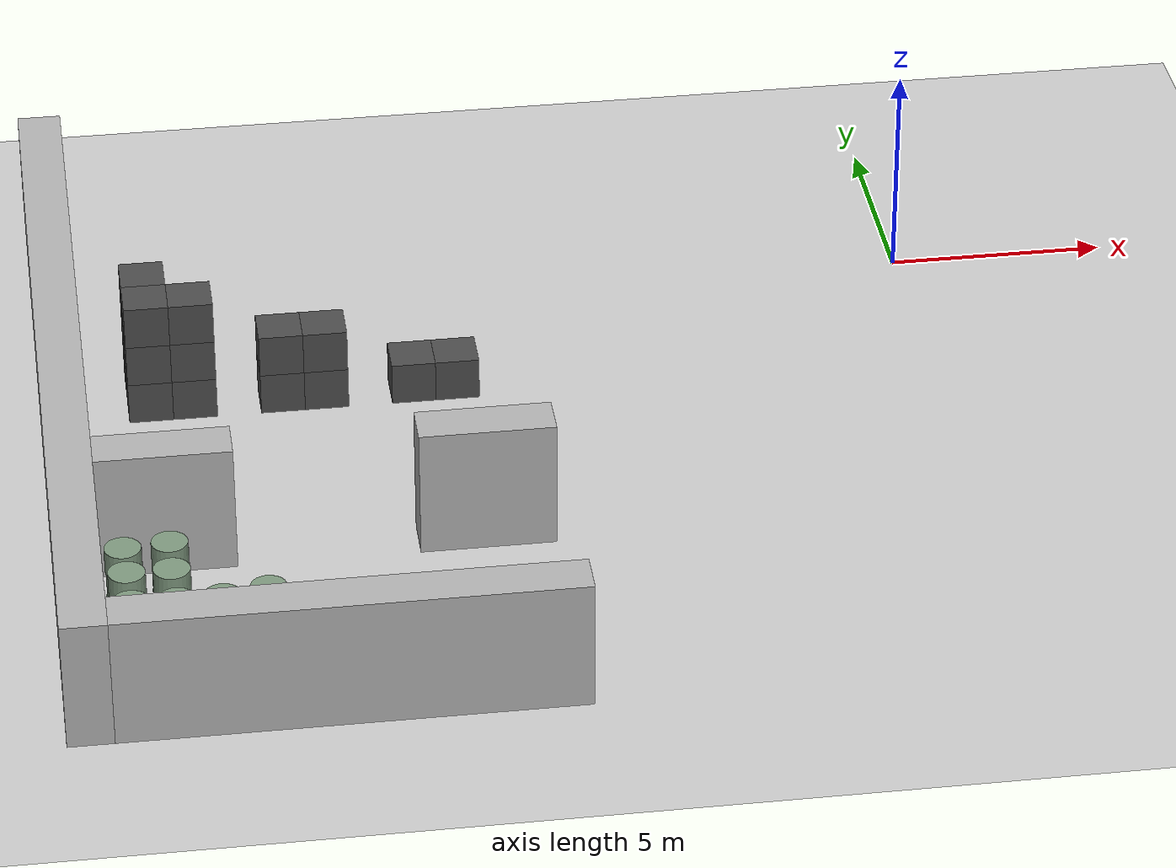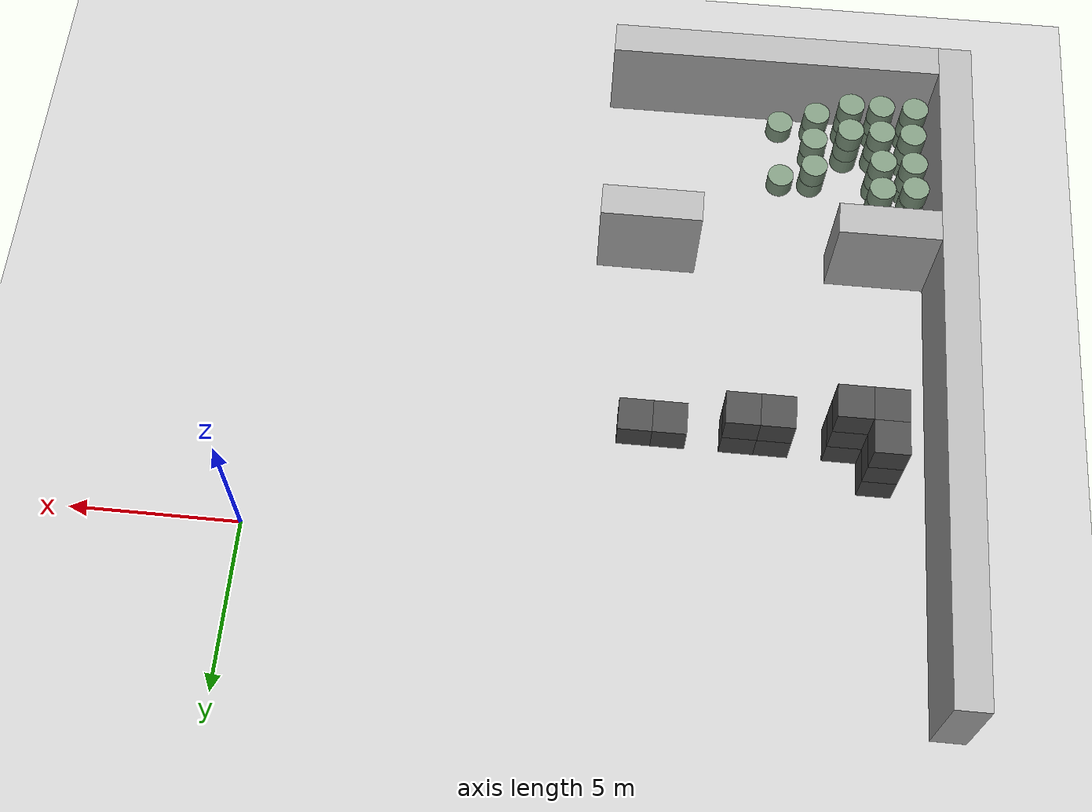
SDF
<sdf version="1.6">
 <world name="default">
  <include><uri>model://ground_plane</uri></include>
  <model name="wall_0">
   <pose>-20.0 -6.0 1.5 0 -0 0</pose>
   <static>True</static>
   <link name="link">
    <inertial>
     <mass>100</mass>
     <inertia>
      <ixx>0.166667</ixx>
      <ixy>0</ixy>
      <ixz>0</ixz>
      <iyy>0.166667</iyy>
      <iyz>0</iyz>
      <izz>0.166667</izz>
     </inertia>
    </inertial>
    <collision name="collision"><geometry><box><size>1.0 21.0 3.0</size></box></geometry></collision>
    <visual name="visual">
     <geometry><box><size>1.0 21.0 3.0</size></box></geometry>
     <material><ambient>0.7 0.7 0.7 1</ambient><diffuse>0.7 0.7 0.7 1</diffuse></material>
    </visual>
   </link>
  </model>
  <model name="wall_5">
   <pose>-14.5 -16.0 1.5 0 -0 0</pose>
   <static>True</static>
   <link name="link">
    <inertial>
     <mass>100</mass>
     <inertia>
      <ixx>0.166667</ixx>
      <ixy>0</ixy>
      <ixz>0</ixz>
      <iyy>0.166667</iyy>
      <iyz>0</iyz>
      <izz>0.166667</izz>
     </inertia>
    </inertial>
    <collision name="collision"><geometry><box><size>10.0 1.0 3.0</size></box></geometry></collision>
    <visual name="visual">
     <geometry><box><size>10.0 1.0 3.0</size></box></geometry>
     <material><ambient>0.7 0.7 0.7 1</ambient><diffuse>0.7 0.7 0.7 1</diffuse></material>
    </visual>
   </link>
  </model>
  <model name="wall_7">
   <pose>-18.0 -10.0 1.5 0 -0 0</pose>
   <static>True</static>
   <link name="link">
    <inertial>
     <mass>100</mass>
     <inertia>
      <ixx>0.166667</ixx>
      <ixy>0</ixy>
      <ixz>0</ixz>
      <iyy>0.166667</iyy>
      <iyz>0</iyz>
      <izz>0.166667</izz>
     </inertia>
    </inertial>
    <collision name="collision"><geometry><box><size>3.0 1.0 3.0</size></box></geometry></collision>
    <visual name="visual">
     <geometry><box><size>3.0 1.0 3.0</size></box></geometry>
     <material><ambient>0.7 0.7 0.7 1</ambient><diffuse>0.7 0.7 0.7 1</diffuse></material>
    </visual>
   </link>
  </model>
  <model name="wall_8">
   <pose>-11.0 -10.0 1.5 0 -0 0</pose>
   <static>True</static>
   <link name="link">
    <inertial>
     <mass>100</mass>
     <inertia>
      <ixx>0.166667</ixx>
      <ixy>0</ixy>
      <ixz>0</ixz>
      <iyy>0.166667</iyy>
      <iyz>0</iyz>
      <izz>0.166667</izz>
     </inertia>
    </inertial>
    <collision name="collision"><geometry><box><size>3.0 1.0 3.0</size></box></geometry></collision>
    <visual name="visual">
     <geometry><box><size>3.0 1.0 3.0</size></box></geometry>
     <material><ambient>0.7 0.7 0.7 1</ambient><diffuse>0.7 0.7 0.7 1</diffuse></material>
    </visual>
   </link>
  </model>
  <model name="unit_box_0">
   <pose>-18.0 -4.0 0.5 0 -0 0</pose>
   <static>True</static>
   <link name="link">
    <inertial>
     <mass>100</mass>
     <inertia>
      <ixx>0.166667</ixx>
      <ixy>0</ixy>
      <ixz>0</ixz>
      <iyy>0.166667</iyy>
      <iyz>0</iyz>
      <izz>0.166667</izz>
     </inertia>
    </inertial>
    <collision name="collision"><geometry><box><size>1.0 1.0 1.0</size></box></geometry></collision>
    <visual name="visual">
     <geometry><box><size>1.0 1.0 1.0</size></box></geometry>
     <material><ambient>0.3 0.3 0.3 1</ambient><diffuse>0.3 0.3 0.3 1</diffuse></material>
    </visual>
   </link>
  </model>
  <model name="unit_box_1">
   <pose>-18.0 -4.0 1.5 0 -0 0</pose>
   <static>True</static>
   <link name="link">
    <inertial>
     <mass>100</mass>
     <inertia>
      <ixx>0.166667</ixx>
      <ixy>0</ixy>
      <ixz>0</ixz>
      <iyy>0.166667</iyy>
      <iyz>0</iyz>
      <izz>0.166667</izz>
     </inertia>
    </inertial>
    <collision name="collision"><geometry><box><size>1.0 1.0 1.0</size></box></geometry></collision>
    <visual name="visual">
     <geometry><box><size>1.0 1.0 1.0</size></box></geometry>
     <material><ambient>0.3 0.3 0.3 1</ambient><diffuse>0.3 0.3 0.3 1</diffuse></material>
    </visual>
   </link>
  </model>
  <model name="unit_box_2">
   <pose>-18.0 -4.0 2.5 0 -0 0</pose>
   <static>True</static>
   <link name="link">
    <inertial>
     <mass>100</mass>
     <inertia>
      <ixx>0.166667</ixx>
      <ixy>0</ixy>
      <ixz>0</ixz>
      <iyy>0.166667</iyy>
      <iyz>0</iyz>
      <izz>0.166667</izz>
     </inertia>
    </inertial>
    <collision name="collision"><geometry><box><size>1.0 1.0 1.0</size></box></geometry></collision>
    <visual name="visual">
     <geometry><box><size>1.0 1.0 1.0</size></box></geometry>
     <material><ambient>0.3 0.3 0.3 1</ambient><diffuse>0.3 0.3 0.3 1</diffuse></material>
    </visual>
   </link>
  </model>
  <model name="unit_box_3">
   <pose>-18.0 -3.0 0.5 0 -0 0</pose>
   <static>True</static>
   <link name="link">
    <inertial>
     <mass>100</mass>
     <inertia>
      <ixx>0.166667</ixx>
      <ixy>0</ixy>
      <ixz>0</ixz>
      <iyy>0.166667</iyy>
      <iyz>0</iyz>
      <izz>0.166667</izz>
     </inertia>
    </inertial>
    <collision name="collision"><geometry><box><size>1.0 1.0 1.0</size></box></geometry></collision>
    <visual name="visual">
     <geometry><box><size>1.0 1.0 1.0</size></box></geometry>
     <material><ambient>0.3 0.3 0.3 1</ambient><diffuse>0.3 0.3 0.3 1</diffuse></material>
    </visual>
   </link>
  </model>
  <model name="unit_box_4">
   <pose>-18.0 -3.0 1.5 0 -0 0</pose>
   <static>True</static>
   <link name="link">
    <inertial>
     <mass>100</mass>
     <inertia>
      <ixx>0.166667</ixx>
      <ixy>0</ixy>
      <ixz>0</ixz>
      <iyy>0.166667</iyy>
      <iyz>0</iyz>
      <izz>0.166667</izz>
     </inertia>
    </inertial>
    <collision name="collision"><geometry><box><size>1.0 1.0 1.0</size></box></geometry></collision>
    <visual name="visual">
     <geometry><box><size>1.0 1.0 1.0</size></box></geometry>
     <material><ambient>0.3 0.3 0.3 1</ambient><diffuse>0.3 0.3 0.3 1</diffuse></material>
    </visual>
   </link>
  </model>
  <model name="unit_box_5">
   <pose>-18.0 -3.0 2.5 0 -0 0</pose>
   <static>True</static>
   <link name="link">
    <inertial>
     <mass>100</mass>
     <inertia>
      <ixx>0.166667</ixx>
      <ixy>0</ixy>
      <ixz>0</ixz>
      <iyy>0.166667</iyy>
      <iyz>0</iyz>
      <izz>0.166667</izz>
     </inertia>
    </inertial>
    <collision name="collision"><geometry><box><size>1.0 1.0 1.0</size></box></geometry></collision>
    <visual name="visual">
     <geometry><box><size>1.0 1.0 1.0</size></box></geometry>
     <material><ambient>0.3 0.3 0.3 1</ambient><diffuse>0.3 0.3 0.3 1</diffuse></material>
    </visual>
   </link>
  </model>
  <model name="unit_box_15">
   <pose>-17.0 -4.0 0.5 0 -0 0</pose>
   <static>True</static>
   <link name="link">
    <inertial>
     <mass>100</mass>
     <inertia>
      <ixx>0.166667</ixx>
      <ixy>0</ixy>
      <ixz>0</ixz>
      <iyy>0.166667</iyy>
      <iyz>0</iyz>
      <izz>0.166667</izz>
     </inertia>
    </inertial>
    <collision name="collision"><geometry><box><size>1.0 1.0 1.0</size></box></geometry></collision>
    <visual name="visual">
     <geometry><box><size>1.0 1.0 1.0</size></box></geometry>
     <material><ambient>0.3 0.3 0.3 1</ambient><diffuse>0.3 0.3 0.3 1</diffuse></material>
    </visual>
   </link>
  </model>
  <model name="unit_box_16">
   <pose>-17.0 -4.0 1.5 0 -0 0</pose>
   <static>True</static>
   <link name="link">
    <inertial>
     <mass>100</mass>
     <inertia>
      <ixx>0.166667</ixx>
      <ixy>0</ixy>
      <ixz>0</ixz>
      <iyy>0.166667</iyy>
      <iyz>0</iyz>
      <izz>0.166667</izz>
     </inertia>
    </inertial>
    <collision name="collision"><geometry><box><size>1.0 1.0 1.0</size></box></geometry></collision>
    <visual name="visual">
     <geometry><box><size>1.0 1.0 1.0</size></box></geometry>
     <material><ambient>0.3 0.3 0.3 1</ambient><diffuse>0.3 0.3 0.3 1</diffuse></material>
    </visual>
   </link>
  </model>
  <model name="unit_box_17">
   <pose>-17.0 -4.0 2.5 0 -0 0</pose>
   <static>True</static>
   <link name="link">
    <inertial>
     <mass>100</mass>
     <inertia>
      <ixx>0.166667</ixx>
      <ixy>0</ixy>
      <ixz>0</ixz>
      <iyy>0.166667</iyy>
      <iyz>0</iyz>
      <izz>0.166667</izz>
     </inertia>
    </inertial>
    <collision name="collision"><geometry><box><size>1.0 1.0 1.0</size></box></geometry></collision>
    <visual name="visual">
     <geometry><box><size>1.0 1.0 1.0</size></box></geometry>
     <material><ambient>0.3 0.3 0.3 1</ambient><diffuse>0.3 0.3 0.3 1</diffuse></material>
    </visual>
   </link>
  </model>
  <model name="unit_box_31">
   <pose>-15.0 -4.0 0.5 0 -0 0</pose>
   <static>True</static>
   <link name="link">
    <inertial>
     <mass>100</mass>
     <inertia>
      <ixx>0.166667</ixx>
      <ixy>0</ixy>
      <ixz>0</ixz>
      <iyy>0.166667</iyy>
      <iyz>0</iyz>
      <izz>0.166667</izz>
     </inertia>
    </inertial>
    <collision name="collision"><geometry><box><size>1.0 1.0 1.0</size></box></geometry></collision>
    <visual name="visual">
     <geometry><box><size>1.0 1.0 1.0</size></box></geometry>
     <material><ambient>0.3 0.3 0.3 1</ambient><diffuse>0.3 0.3 0.3 1</diffuse></material>
    </visual>
   </link>
  </model>
  <model name="unit_box_32">
   <pose>-15.0 -4.0 1.5 0 -0 0</pose>
   <static>True</static>
   <link name="link">
    <inertial>
     <mass>100</mass>
     <inertia>
      <ixx>0.166667</ixx>
      <ixy>0</ixy>
      <ixz>0</ixz>
      <iyy>0.166667</iyy>
      <iyz>0</iyz>
      <izz>0.166667</izz>
     </inertia>
    </inertial>
    <collision name="collision"><geometry><box><size>1.0 1.0 1.0</size></box></geometry></collision>
    <visual name="visual">
     <geometry><box><size>1.0 1.0 1.0</size></box></geometry>
     <material><ambient>0.3 0.3 0.3 1</ambient><diffuse>0.3 0.3 0.3 1</diffuse></material>
    </visual>
   </link>
  </model>
  <model name="unit_box_41">
   <pose>-14.0 -4.0 0.5 0 -0 0</pose>
   <static>True</static>
   <link name="link">
    <inertial>
     <mass>100</mass>
     <inertia>
      <ixx>0.166667</ixx>
      <ixy>0</ixy>
      <ixz>0</ixz>
      <iyy>0.166667</iyy>
      <iyz>0</iyz>
      <izz>0.166667</izz>
     </inertia>
    </inertial>
    <collision name="collision"><geometry><box><size>1.0 1.0 1.0</size></box></geometry></collision>
    <visual name="visual">
     <geometry><box><size>1.0 1.0 1.0</size></box></geometry>
     <material><ambient>0.3 0.3 0.3 1</ambient><diffuse>0.3 0.3 0.3 1</diffuse></material>
    </visual>
   </link>
  </model>
  <model name="unit_box_42">
   <pose>-14.0 -4.0 1.5 0 -0 0</pose>
   <static>True</static>
   <link name="link">
    <inertial>
     <mass>100</mass>
     <inertia>
      <ixx>0.166667</ixx>
      <ixy>0</ixy>
      <ixz>0</ixz>
      <iyy>0.166667</iyy>
      <iyz>0</iyz>
      <izz>0.166667</izz>
     </inertia>
    </inertial>
    <collision name="collision"><geometry><box><size>1.0 1.0 1.0</size></box></geometry></collision>
    <visual name="visual">
     <geometry><box><size>1.0 1.0 1.0</size></box></geometry>
     <material><ambient>0.3 0.3 0.3 1</ambient><diffuse>0.3 0.3 0.3 1</diffuse></material>
    </visual>
   </link>
  </model>
  <model name="unit_box_51">
   <pose>-12.0 -4.0 0.5 0 -0 0</pose>
   <static>True</static>
   <link name="link">
    <inertial>
     <mass>100</mass>
     <inertia>
      <ixx>0.166667</ixx>
      <ixy>0</ixy>
      <ixz>0</ixz>
      <iyy>0.166667</iyy>
      <iyz>0</iyz>
      <izz>0.166667</izz>
     </inertia>
    </inertial>
    <collision name="collision"><geometry><box><size>1.0 1.0 1.0</size></box></geometry></collision>
    <visual name="visual">
     <geometry><box><size>1.0 1.0 1.0</size></box></geometry>
     <material><ambient>0.3 0.3 0.3 1</ambient><diffuse>0.3 0.3 0.3 1</diffuse></material>
    </visual>
   </link>
  </model>
  <model name="unit_box_55">
   <pose>-11.0 -4.0 0.5 0 -0 0</pose>
   <static>True</static>
   <link name="link">
    <inertial>
     <mass>100</mass>
     <inertia>
      <ixx>0.166667</ixx>
      <ixy>0</ixy>
      <ixz>0</ixz>
      <iyy>0.166667</iyy>
      <iyz>0</iyz>
      <izz>0.166667</izz>
     </inertia>
    </inertial>
    <collision name="collision"><geometry><box><size>1.0 1.0 1.0</size></box></geometry></collision>
    <visual name="visual">
     <geometry><box><size>1.0 1.0 1.0</size></box></geometry>
     <material><ambient>0.3 0.3 0.3 1</ambient><diffuse>0.3 0.3 0.3 1</diffuse></material>
    </visual>
   </link>
  </model>
  <model name="unit_cylinder_0">
   <pose>-19.0256209289 -15.0215560185 0.3 0 -0 0</pose>
   <static>True</static>
   <link name="link">
    <inertial>
     <mass>100</mass>
     <inertia><ixx>0.145833</ixx><ixy>0</ixy><ixz>0</ixz><iyy>0.145833</iyy><iyz>0</iyz><izz>0.125</izz></inertia>
    </inertial>
    <collision name="collision">
     <geometry><cylinder><radius>0.4</radius><length>0.6</length></cylinder></geometry>
     <max_contacts>100</max_contacts>
    </collision>
    <visual name="visual">
     <geometry><cylinder><radius>0.4</radius><length>0.6</length></cylinder></geometry>
     <material><ambient>0.5 0.6 0.5 1</ambient><diffuse>0.5 0.6 0.5 1</diffuse></material>
    </visual>
   </link>
  </model>
  <model name="unit_cylinder_1">
   <pose>-19.0192425277 -15.023853561 0.9 0 -0 0</pose>
   <static>True</static>
   <link name="link">
    <inertial>
     <mass>100</mass>
     <inertia><ixx>0.145833</ixx><ixy>0</ixy><ixz>0</ixz><iyy>0.145833</iyy><iyz>0</iyz><izz>0.125</izz></inertia>
    </inertial>
    <collision name="collision">
     <geometry><cylinder><radius>0.4</radius><length>0.6</length></cylinder></geometry>
     <max_contacts>100</max_contacts>
    </collision>
    <visual name="visual">
     <geometry><cylinder><radius>0.4</radius><length>0.6</length></cylinder></geometry>
     <material><ambient>0.5 0.6 0.5 1</ambient><diffuse>0.5 0.6 0.5 1</diffuse></material>
    </visual>
   </link>
  </model>
  <model name="unit_cylinder_2">
   <pose>-19.0184877084 -15.0180010428 1.5 0 -0 0</pose>
   <static>True</static>
   <link name="link">
    <inertial>
     <mass>100</mass>
     <inertia><ixx>0.145833</ixx><ixy>0</ixy><ixz>0</ixz><iyy>0.145833</iyy><iyz>0</iyz><izz>0.125</izz></inertia>
    </inertial>
    <collision name="collision">
     <geometry><cylinder><radius>0.4</radius><length>0.6</length></cylinder></geometry>
     <max_contacts>100</max_contacts>
    </collision>
    <visual name="visual">
     <geometry><cylinder><radius>0.4</radius><length>0.6</length></cylinder></geometry>
     <material><ambient>0.5 0.6 0.5 1</ambient><diffuse>0.5 0.6 0.5 1</diffuse></material>
    </visual>
   </link>
  </model>
  <model name="unit_cylinder_3">
   <pose>-18.953104168 -14.0377245221 0.3 0 -0 0</pose>
   <static>True</static>
   <link name="link">
    <inertial>
     <mass>100</mass>
     <inertia><ixx>0.145833</ixx><ixy>0</ixy><ixz>0</ixz><iyy>0.145833</iyy><iyz>0</iyz><izz>0.125</izz></inertia>
    </inertial>
    <collision name="collision">
     <geometry><cylinder><radius>0.4</radius><length>0.6</length></cylinder></geometry>
     <max_contacts>100</max_contacts>
    </collision>
    <visual name="visual">
     <geometry><cylinder><radius>0.4</radius><length>0.6</length></cylinder></geometry>
     <material><ambient>0.5 0.6 0.5 1</ambient><diffuse>0.5 0.6 0.5 1</diffuse></material>
    </visual>
   </link>
  </model>
  <model name="unit_cylinder_4">
   <pose>-18.9475921119 -14.0286620714 0.9 0 -0 0</pose>
   <static>True</static>
   <link name="link">
    <inertial>
     <mass>100</mass>
     <inertia><ixx>0.145833</ixx><ixy>0</ixy><ixz>0</ixz><iyy>0.145833</iyy><iyz>0</iyz><izz>0.125</izz></inertia>
    </inertial>
    <collision name="collision">
     <geometry><cylinder><radius>0.4</radius><length>0.6</length></cylinder></geometry>
     <max_contacts>100</max_contacts>
    </collision>
    <visual name="visual">
     <geometry><cylinder><radius>0.4</radius><length>0.6</length></cylinder></geometry>
     <material><ambient>0.5 0.6 0.5 1</ambient><diffuse>0.5 0.6 0.5 1</diffuse></material>
    </visual>
   </link>
  </model>
  <model name="unit_cylinder_5">
   <pose>-18.9456277575 -14.0303023276 1.5 0 -0 0</pose>
   <static>True</static>
   <link name="link">
    <inertial>
     <mass>100</mass>
     <inertia><ixx>0.145833</ixx><ixy>0</ixy><ixz>0</ixz><iyy>0.145833</iyy><iyz>0</iyz><izz>0.125</izz></inertia>
    </inertial>
    <collision name="collision">
     <geometry><cylinder><radius>0.4</radius><length>0.6</length></cylinder></geometry>
     <max_contacts>100</max_contacts>
    </collision>
    <visual name="visual">
     <geometry><cylinder><radius>0.4</radius><length>0.6</length></cylinder></geometry>
     <material><ambient>0.5 0.6 0.5 1</ambient><diffuse>0.5 0.6 0.5 1</diffuse></material>
    </visual>
   </link>
  </model>
  <model name="unit_cylinder_6">
   <pose>-18.98061288 -12.9682051942 0.3 0 -0 0</pose>
   <static>True</static>
   <link name="link">
    <inertial>
     <mass>100</mass>
     <inertia><ixx>0.145833</ixx><ixy>0</ixy><ixz>0</ixz><iyy>0.145833</iyy><iyz>0</iyz><izz>0.125</izz></inertia>
    </inertial>
    <collision name="collision">
     <geometry><cylinder><radius>0.4</radius><length>0.6</length></cylinder></geometry>
     <max_contacts>100</max_contacts>
    </collision>
    <visual name="visual">
     <geometry><cylinder><radius>0.4</radius><length>0.6</length></cylinder></geometry>
     <material><ambient>0.5 0.6 0.5 1</ambient><diffuse>0.5 0.6 0.5 1</diffuse></material>
    </visual>
   </link>
  </model>
  <model name="unit_cylinder_7">
   <pose>-18.9729813097 -12.9644257842 0.9 0 -0 0</pose>
   <static>True</static>
   <link name="link">
    <inertial>
     <mass>100</mass>
     <inertia><ixx>0.145833</ixx><ixy>0</ixy><ixz>0</ixz><iyy>0.145833</iyy><iyz>0</iyz><izz>0.125</izz></inertia>
    </inertial>
    <collision name="collision">
     <geometry><cylinder><radius>0.4</radius><length>0.6</length></cylinder></geometry>
     <max_contacts>100</max_contacts>
    </collision>
    <visual name="visual">
     <geometry><cylinder><radius>0.4</radius><length>0.6</length></cylinder></geometry>
     <material><ambient>0.5 0.6 0.5 1</ambient><diffuse>0.5 0.6 0.5 1</diffuse></material>
    </visual>
   </link>
  </model>
  <model name="unit_cylinder_8">
   <pose>-18.9767976244 -12.9632901843 1.5 0 -0 0</pose>
   <static>True</static>
   <link name="link">
    <inertial>
     <mass>100</mass>
     <inertia><ixx>0.145833</ixx><ixy>0</ixy><ixz>0</ixz><iyy>0.145833</iyy><iyz>0</iyz><izz>0.125</izz></inertia>
    </inertial>
    <collision name="collision">
     <geometry><cylinder><radius>0.4</radius><length>0.6</length></cylinder></geometry>
     <max_contacts>100</max_contacts>
    </collision>
    <visual name="visual">
     <geometry><cylinder><radius>0.4</radius><length>0.6</length></cylinder></geometry>
     <material><ambient>0.5 0.6 0.5 1</ambient><diffuse>0.5 0.6 0.5 1</diffuse></material>
    </visual>
   </link>
  </model>
  <model name="unit_cylinder_9">
   <pose>-19.002848909 -12.0560067834 0.3 0 -0 0</pose>
   <static>True</static>
   <link name="link">
    <inertial>
     <mass>100</mass>
     <inertia><ixx>0.145833</ixx><ixy>0</ixy><ixz>0</ixz><iyy>0.145833</iyy><iyz>0</iyz><izz>0.125</izz></inertia>
    </inertial>
    <collision name="collision">
     <geometry><cylinder><radius>0.4</radius><length>0.6</length></cylinder></geometry>
     <max_contacts>100</max_contacts>
    </collision>
    <visual name="visual">
     <geometry><cylinder><radius>0.4</radius><length>0.6</length></cylinder></geometry>
     <material><ambient>0.5 0.6 0.5 1</ambient><diffuse>0.5 0.6 0.5 1</diffuse></material>
    </visual>
   </link>
  </model>
  <model name="unit_cylinder_10">
   <pose>-18.9887632329 -12.0552406525 0.9 0 -0 0</pose>
   <static>True</static>
   <link name="link">
    <inertial>
     <mass>100</mass>
     <inertia><ixx>0.145833</ixx><ixy>0</ixy><ixz>0</ixz><iyy>0.145833</iyy><iyz>0</iyz><izz>0.125</izz></inertia>
    </inertial>
    <collision name="collision">
     <geometry><cylinder><radius>0.4</radius><length>0.6</length></cylinder></geometry>
     <max_contacts>100</max_contacts>
    </collision>
    <visual name="visual">
     <geometry><cylinder><radius>0.4</radius><length>0.6</length></cylinder></geometry>
     <material><ambient>0.5 0.6 0.5 1</ambient><diffuse>0.5 0.6 0.5 1</diffuse></material>
    </visual>
   </link>
  </model>
  <model name="unit_cylinder_11">
   <pose>-19.0065287953 -12.0554188884 1.5 0 -0 0</pose>
   <static>True</static>
   <link name="link">
    <inertial>
     <mass>100</mass>
     <inertia><ixx>0.145833</ixx><ixy>0</ixy><ixz>0</ixz><iyy>0.145833</iyy><iyz>0</iyz><izz>0.125</izz></inertia>
    </inertial>
    <collision name="collision">
     <geometry><cylinder><radius>0.4</radius><length>0.6</length></cylinder></geometry>
     <max_contacts>100</max_contacts>
    </collision>
    <visual name="visual">
     <geometry><cylinder><radius>0.4</radius><length>0.6</length></cylinder></geometry>
     <material><ambient>0.5 0.6 0.5 1</ambient><diffuse>0.5 0.6 0.5 1</diffuse></material>
    </visual>
   </link>
  </model>
  <model name="unit_cylinder_12">
   <pose>-17.9824395546 -15.0267400463 0.3 0 -0 0</pose>
   <static>True</static>
   <link name="link">
    <inertial>
     <mass>100</mass>
     <inertia><ixx>0.145833</ixx><ixy>0</ixy><ixz>0</ixz><iyy>0.145833</iyy><iyz>0</iyz><izz>0.125</izz></inertia>
    </inertial>
    <collision name="collision">
     <geometry><cylinder><radius>0.4</radius><length>0.6</length></cylinder></geometry>
     <max_contacts>100</max_contacts>
    </collision>
    <visual name="visual">
     <geometry><cylinder><radius>0.4</radius><length>0.6</length></cylinder></geometry>
     <material><ambient>0.5 0.6 0.5 1</ambient><diffuse>0.5 0.6 0.5 1</diffuse></material>
    </visual>
   </link>
  </model>
  <model name="unit_cylinder_13">
   <pose>-17.9967803007 -15.0176531859 0.9 0 -0 0</pose>
   <static>True</static>
   <link name="link">
    <inertial>
     <mass>100</mass>
     <inertia><ixx>0.145833</ixx><ixy>0</ixy><ixz>0</ixz><iyy>0.145833</iyy><iyz>0</iyz><izz>0.125</izz></inertia>
    </inertial>
    <collision name="collision">
     <geometry><cylinder><radius>0.4</radius><length>0.6</length></cylinder></geometry>
     <max_contacts>100</max_contacts>
    </collision>
    <visual name="visual">
     <geometry><cylinder><radius>0.4</radius><length>0.6</length></cylinder></geometry>
     <material><ambient>0.5 0.6 0.5 1</ambient><diffuse>0.5 0.6 0.5 1</diffuse></material>
    </visual>
   </link>
  </model>
  <model name="unit_cylinder_14">
   <pose>-17.9820540237 -15.0149193636 1.5 0 -0 0</pose>
   <static>True</static>
   <link name="link">
    <inertial>
     <mass>100</mass>
     <inertia><ixx>0.145833</ixx><ixy>0</ixy><ixz>0</ixz><iyy>0.145833</iyy><iyz>0</iyz><izz>0.125</izz></inertia>
    </inertial>
    <collision name="collision">
     <geometry><cylinder><radius>0.4</radius><length>0.6</length></cylinder></geometry>
     <max_contacts>100</max_contacts>
    </collision>
    <visual name="visual">
     <geometry><cylinder><radius>0.4</radius><length>0.6</length></cylinder></geometry>
     <material><ambient>0.5 0.6 0.5 1</ambient><diffuse>0.5 0.6 0.5 1</diffuse></material>
    </visual>
   </link>
  </model>
  <model name="unit_cylinder_15">
   <pose>-17.9792672833 -14.0561960376 0.3 0 -0 0</pose>
   <static>True</static>
   <link name="link">
    <inertial>
     <mass>100</mass>
     <inertia><ixx>0.145833</ixx><ixy>0</ixy><ixz>0</ixz><iyy>0.145833</iyy><iyz>0</iyz><izz>0.125</izz></inertia>
    </inertial>
    <collision name="collision">
     <geometry><cylinder><radius>0.4</radius><length>0.6</length></cylinder></geometry>
     <max_contacts>100</max_contacts>
    </collision>
    <visual name="visual">
     <geometry><cylinder><radius>0.4</radius><length>0.6</length></cylinder></geometry>
     <material><ambient>0.5 0.6 0.5 1</ambient><diffuse>0.5 0.6 0.5 1</diffuse></material>
    </visual>
   </link>
  </model>
  <model name="unit_cylinder_16">
   <pose>-17.9863746435 -14.0493748478 0.9 0 -0 0</pose>
   <static>True</static>
   <link name="link">
    <inertial>
     <mass>100</mass>
     <inertia><ixx>0.145833</ixx><ixy>0</ixy><ixz>0</ixz><iyy>0.145833</iyy><iyz>0</iyz><izz>0.125</izz></inertia>
    </inertial>
    <collision name="collision">
     <geometry><cylinder><radius>0.4</radius><length>0.6</length></cylinder></geometry>
     <max_contacts>100</max_contacts>
    </collision>
    <visual name="visual">
     <geometry><cylinder><radius>0.4</radius><length>0.6</length></cylinder></geometry>
     <material><ambient>0.5 0.6 0.5 1</ambient><diffuse>0.5 0.6 0.5 1</diffuse></material>
    </visual>
   </link>
  </model>
  <model name="unit_cylinder_17">
   <pose>-17.9851615176 -14.0585824273 1.5 0 -0 0</pose>
   <static>True</static>
   <link name="link">
    <inertial>
     <mass>100</mass>
     <inertia><ixx>0.145833</ixx><ixy>0</ixy><ixz>0</ixz><iyy>0.145833</iyy><iyz>0</iyz><izz>0.125</izz></inertia>
    </inertial>
    <collision name="collision">
     <geometry><cylinder><radius>0.4</radius><length>0.6</length></cylinder></geometry>
     <max_contacts>100</max_contacts>
    </collision>
    <visual name="visual">
     <geometry><cylinder><radius>0.4</radius><length>0.6</length></cylinder></geometry>
     <material><ambient>0.5 0.6 0.5 1</ambient><diffuse>0.5 0.6 0.5 1</diffuse></material>
    </visual>
   </link>
  </model>
  <model name="unit_cylinder_18">
   <pose>-18.0230101308 -12.9663943316 0.3 0 -0 0</pose>
   <static>True</static>
   <link name="link">
    <inertial>
     <mass>100</mass>
     <inertia><ixx>0.145833</ixx><ixy>0</ixy><ixz>0</ixz><iyy>0.145833</iyy><iyz>0</iyz><izz>0.125</izz></inertia>
    </inertial>
    <collision name="collision">
     <geometry><cylinder><radius>0.4</radius><length>0.6</length></cylinder></geometry>
     <max_contacts>100</max_contacts>
    </collision>
    <visual name="visual">
     <geometry><cylinder><radius>0.4</radius><length>0.6</length></cylinder></geometry>
     <material><ambient>0.5 0.6 0.5 1</ambient><diffuse>0.5 0.6 0.5 1</diffuse></material>
    </visual>
   </link>
  </model>
  <model name="unit_cylinder_19">
   <pose>-18.0216407804 -12.9560162052 0.9 0 -0 0</pose>
   <static>True</static>
   <link name="link">
    <inertial>
     <mass>100</mass>
     <inertia><ixx>0.145833</ixx><ixy>0</ixy><ixz>0</ixz><iyy>0.145833</iyy><iyz>0</iyz><izz>0.125</izz></inertia>
    </inertial>
    <collision name="collision">
     <geometry><cylinder><radius>0.4</radius><length>0.6</length></cylinder></geometry>
     <max_contacts>100</max_contacts>
    </collision>
    <visual name="visual">
     <geometry><cylinder><radius>0.4</radius><length>0.6</length></cylinder></geometry>
     <material><ambient>0.5 0.6 0.5 1</ambient><diffuse>0.5 0.6 0.5 1</diffuse></material>
    </visual>
   </link>
  </model>
  <model name="unit_cylinder_20">
   <pose>-18.0237852581 -12.9568948736 1.5 0 -0 0</pose>
   <static>True</static>
   <link name="link">
    <inertial>
     <mass>100</mass>
     <inertia><ixx>0.145833</ixx><ixy>0</ixy><ixz>0</ixz><iyy>0.145833</iyy><iyz>0</iyz><izz>0.125</izz></inertia>
    </inertial>
    <collision name="collision">
     <geometry><cylinder><radius>0.4</radius><length>0.6</length></cylinder></geometry>
     <max_contacts>100</max_contacts>
    </collision>
    <visual name="visual">
     <geometry><cylinder><radius>0.4</radius><length>0.6</length></cylinder></geometry>
     <material><ambient>0.5 0.6 0.5 1</ambient><diffuse>0.5 0.6 0.5 1</diffuse></material>
    </visual>
   </link>
  </model>
  <model name="unit_cylinder_21">
   <pose>-18.0096310164 -11.9608410908 0.3 0 -0 0</pose>
   <static>True</static>
   <link name="link">
    <inertial>
     <mass>100</mass>
     <inertia><ixx>0.145833</ixx><ixy>0</ixy><ixz>0</ixz><iyy>0.145833</iyy><iyz>0</iyz><izz>0.125</izz></inertia>
    </inertial>
    <collision name="collision">
     <geometry><cylinder><radius>0.4</radius><length>0.6</length></cylinder></geometry>
     <max_contacts>100</max_contacts>
    </collision>
    <visual name="visual">
     <geometry><cylinder><radius>0.4</radius><length>0.6</length></cylinder></geometry>
     <material><ambient>0.5 0.6 0.5 1</ambient><diffuse>0.5 0.6 0.5 1</diffuse></material>
    </visual>
   </link>
  </model>
  <model name="unit_cylinder_22">
   <pose>-18.0021070773 -11.9518941825 0.9 0 -0 0</pose>
   <static>True</static>
   <link name="link">
    <inertial>
     <mass>100</mass>
     <inertia><ixx>0.145833</ixx><ixy>0</ixy><ixz>0</ixz><iyy>0.145833</iyy><iyz>0</iyz><izz>0.125</izz></inertia>
    </inertial>
    <collision name="collision">
     <geometry><cylinder><radius>0.4</radius><length>0.6</length></cylinder></geometry>
     <max_contacts>100</max_contacts>
    </collision>
    <visual name="visual">
     <geometry><cylinder><radius>0.4</radius><length>0.6</length></cylinder></geometry>
     <material><ambient>0.5 0.6 0.5 1</ambient><diffuse>0.5 0.6 0.5 1</diffuse></material>
    </visual>
   </link>
  </model>
  <model name="unit_cylinder_23">
   <pose>-18.0052567879 -11.9554948666 1.5 0 -0 0</pose>
   <static>True</static>
   <link name="link">
    <inertial>
     <mass>100</mass>
     <inertia><ixx>0.145833</ixx><ixy>0</ixy><ixz>0</ixz><iyy>0.145833</iyy><iyz>0</iyz><izz>0.125</izz></inertia>
    </inertial>
    <collision name="collision">
     <geometry><cylinder><radius>0.4</radius><length>0.6</length></cylinder></geometry>
     <max_contacts>100</max_contacts>
    </collision>
    <visual name="visual">
     <geometry><cylinder><radius>0.4</radius><length>0.6</length></cylinder></geometry>
     <material><ambient>0.5 0.6 0.5 1</ambient><diffuse>0.5 0.6 0.5 1</diffuse></material>
    </visual>
   </link>
  </model>
  <model name="unit_cylinder_24">
   <pose>-17.0452916739 -15.0155849962 0.3 0 -0 0</pose>
   <static>True</static>
   <link name="link">
    <inertial>
     <mass>100</mass>
     <inertia><ixx>0.145833</ixx><ixy>0</ixy><ixz>0</ixz><iyy>0.145833</iyy><iyz>0</iyz><izz>0.125</izz></inertia>
    </inertial>
    <collision name="collision">
     <geometry><cylinder><radius>0.4</radius><length>0.6</length></cylinder></geometry>
     <max_contacts>100</max_contacts>
    </collision>
    <visual name="visual">
     <geometry><cylinder><radius>0.4</radius><length>0.6</length></cylinder></geometry>
     <material><ambient>0.5 0.6 0.5 1</ambient><diffuse>0.5 0.6 0.5 1</diffuse></material>
    </visual>
   </link>
  </model>
  <model name="unit_cylinder_25">
   <pose>-17.0407915945 -15.0139490907 0.9 0 -0 0</pose>
   <static>True</static>
   <link name="link">
    <inertial>
     <mass>100</mass>
     <inertia><ixx>0.145833</ixx><ixy>0</ixy><ixz>0</ixz><iyy>0.145833</iyy><iyz>0</iyz><izz>0.125</izz></inertia>
    </inertial>
    <collision name="collision">
     <geometry><cylinder><radius>0.4</radius><length>0.6</length></cylinder></geometry>
     <max_contacts>100</max_contacts>
    </collision>
    <visual name="visual">
     <geometry><cylinder><radius>0.4</radius><length>0.6</length></cylinder></geometry>
     <material><ambient>0.5 0.6 0.5 1</ambient><diffuse>0.5 0.6 0.5 1</diffuse></material>
    </visual>
   </link>
  </model>
  <model name="unit_cylinder_26">
   <pose>-17.0398075125 -15.0083938675 1.5 0 -0 0</pose>
   <static>True</static>
   <link name="link">
    <inertial>
     <mass>100</mass>
     <inertia><ixx>0.145833</ixx><ixy>0</ixy><ixz>0</ixz><iyy>0.145833</iyy><iyz>0</iyz><izz>0.125</izz></inertia>
    </inertial>
    <collision name="collision">
     <geometry><cylinder><radius>0.4</radius><length>0.6</length></cylinder></geometry>
     <max_contacts>100</max_contacts>
    </collision>
    <visual name="visual">
     <geometry><cylinder><radius>0.4</radius><length>0.6</length></cylinder></geometry>
     <material><ambient>0.5 0.6 0.5 1</ambient><diffuse>0.5 0.6 0.5 1</diffuse></material>
    </visual>
   </link>
  </model>
  <model name="unit_cylinder_27">
   <pose>-17.0280738881 -14.0352273124 0.3 0 -0 0</pose>
   <static>True</static>
   <link name="link">
    <inertial>
     <mass>100</mass>
     <inertia><ixx>0.145833</ixx><ixy>0</ixy><ixz>0</ixz><iyy>0.145833</iyy><iyz>0</iyz><izz>0.125</izz></inertia>
    </inertial>
    <collision name="collision">
     <geometry><cylinder><radius>0.4</radius><length>0.6</length></cylinder></geometry>
     <max_contacts>100</max_contacts>
    </collision>
    <visual name="visual">
     <geometry><cylinder><radius>0.4</radius><length>0.6</length></cylinder></geometry>
     <material><ambient>0.5 0.6 0.5 1</ambient><diffuse>0.5 0.6 0.5 1</diffuse></material>
    </visual>
   </link>
  </model>
  <model name="unit_cylinder_28">
   <pose>-17.0214558692 -14.0360657294 0.9 0 -0 0</pose>
   <static>True</static>
   <link name="link">
    <inertial>
     <mass>100</mass>
     <inertia><ixx>0.145833</ixx><ixy>0</ixy><ixz>0</ixz><iyy>0.145833</iyy><iyz>0</iyz><izz>0.125</izz></inertia>
    </inertial>
    <collision name="collision">
     <geometry><cylinder><radius>0.4</radius><length>0.6</length></cylinder></geometry>
     <max_contacts>100</max_contacts>
    </collision>
    <visual name="visual">
     <geometry><cylinder><radius>0.4</radius><length>0.6</length></cylinder></geometry>
     <material><ambient>0.5 0.6 0.5 1</ambient><diffuse>0.5 0.6 0.5 1</diffuse></material>
    </visual>
   </link>
  </model>
  <model name="unit_cylinder_29">
   <pose>-17.0227115706 -14.0415047536 1.5 0 -0 0</pose>
   <static>True</static>
   <link name="link">
    <inertial>
     <mass>100</mass>
     <inertia><ixx>0.145833</ixx><ixy>0</ixy><ixz>0</ixz><iyy>0.145833</iyy><iyz>0</iyz><izz>0.125</izz></inertia>
    </inertial>
    <collision name="collision">
     <geometry><cylinder><radius>0.4</radius><length>0.6</length></cylinder></geometry>
     <max_contacts>100</max_contacts>
    </collision>
    <visual name="visual">
     <geometry><cylinder><radius>0.4</radius><length>0.6</length></cylinder></geometry>
     <material><ambient>0.5 0.6 0.5 1</ambient><diffuse>0.5 0.6 0.5 1</diffuse></material>
    </visual>
   </link>
  </model>
  <model name="unit_cylinder_30">
   <pose>-16.0303700568 -15.0127432612 0.3 0 -0 0</pose>
   <static>True</static>
   <link name="link">
    <inertial>
     <mass>100</mass>
     <inertia><ixx>0.145833</ixx><ixy>0</ixy><ixz>0</ixz><iyy>0.145833</iyy><iyz>0</iyz><izz>0.125</izz></inertia>
    </inertial>
    <collision name="collision">
     <geometry><cylinder><radius>0.4</radius><length>0.6</length></cylinder></geometry>
     <max_contacts>100</max_contacts>
    </collision>
    <visual name="visual">
     <geometry><cylinder><radius>0.4</radius><length>0.6</length></cylinder></geometry>
     <material><ambient>0.5 0.6 0.5 1</ambient><diffuse>0.5 0.6 0.5 1</diffuse></material>
    </visual>
   </link>
  </model>
  <model name="unit_cylinder_31">
   <pose>-16.0426673124 -15.0136996361 0.9 0 -0 0</pose>
   <static>True</static>
   <link name="link">
    <inertial>
     <mass>100</mass>
     <inertia><ixx>0.145833</ixx><ixy>0</ixy><ixz>0</ixz><iyy>0.145833</iyy><iyz>0</iyz><izz>0.125</izz></inertia>
    </inertial>
    <collision name="collision">
     <geometry><cylinder><radius>0.4</radius><length>0.6</length></cylinder></geometry>
     <max_contacts>100</max_contacts>
    </collision>
    <visual name="visual">
     <geometry><cylinder><radius>0.4</radius><length>0.6</length></cylinder></geometry>
     <material><ambient>0.5 0.6 0.5 1</ambient><diffuse>0.5 0.6 0.5 1</diffuse></material>
    </visual>
   </link>
  </model>
  <model name="unit_cylinder_32">
   <pose>-15.9969842934 -14.0222035126 0.3 0 -0 0</pose>
   <static>True</static>
   <link name="link">
    <inertial>
     <mass>100</mass>
     <inertia><ixx>0.145833</ixx><ixy>0</ixy><ixz>0</ixz><iyy>0.145833</iyy><iyz>0</iyz><izz>0.125</izz></inertia>
    </inertial>
    <collision name="collision">
     <geometry><cylinder><radius>0.4</radius><length>0.6</length></cylinder></geometry>
     <max_contacts>100</max_contacts>
    </collision>
    <visual name="visual">
     <geometry><cylinder><radius>0.4</radius><length>0.6</length></cylinder></geometry>
     <material><ambient>0.5 0.6 0.5 1</ambient><diffuse>0.5 0.6 0.5 1</diffuse></material>
    </visual>
   </link>
  </model>
  <model name="unit_cylinder_33">
   <pose>-15.9842785666 -14.0317341502 0.9 0 -0 0</pose>
   <static>True</static>
   <link name="link">
    <inertial>
     <mass>100</mass>
     <inertia><ixx>0.145833</ixx><ixy>0</ixy><ixz>0</ixz><iyy>0.145833</iyy><iyz>0</iyz><izz>0.125</izz></inertia>
    </inertial>
    <collision name="collision">
     <geometry><cylinder><radius>0.4</radius><length>0.6</length></cylinder></geometry>
     <max_contacts>100</max_contacts>
    </collision>
    <visual name="visual">
     <geometry><cylinder><radius>0.4</radius><length>0.6</length></cylinder></geometry>
     <material><ambient>0.5 0.6 0.5 1</ambient><diffuse>0.5 0.6 0.5 1</diffuse></material>
    </visual>
   </link>
  </model>
  <model name="unit_cylinder_34">
   <pose>-15.992117876 -13.0120478801 0.3 0 -0 0</pose>
   <static>True</static>
   <link name="link">
    <inertial>
     <mass>100</mass>
     <inertia><ixx>0.145833</ixx><ixy>0</ixy><ixz>0</ixz><iyy>0.145833</iyy><iyz>0</iyz><izz>0.125</izz></inertia>
    </inertial>
    <collision name="collision">
     <geometry><cylinder><radius>0.4</radius><length>0.6</length></cylinder></geometry>
     <max_contacts>100</max_contacts>
    </collision>
    <visual name="visual">
     <geometry><cylinder><radius>0.4</radius><length>0.6</length></cylinder></geometry>
     <material><ambient>0.5 0.6 0.5 1</ambient><diffuse>0.5 0.6 0.5 1</diffuse></material>
    </visual>
   </link>
  </model>
  <model name="unit_cylinder_35">
   <pose>-15.9984201338 -13.0186120133 0.9 0 -0 0</pose>
   <static>True</static>
   <link name="link">
    <inertial>
     <mass>100</mass>
     <inertia><ixx>0.145833</ixx><ixy>0</ixy><ixz>0</ixz><iyy>0.145833</iyy><iyz>0</iyz><izz>0.125</izz></inertia>
    </inertial>
    <collision name="collision">
     <geometry><cylinder><radius>0.4</radius><length>0.6</length></cylinder></geometry>
     <max_contacts>100</max_contacts>
    </collision>
    <visual name="visual">
     <geometry><cylinder><radius>0.4</radius><length>0.6</length></cylinder></geometry>
     <material><ambient>0.5 0.6 0.5 1</ambient><diffuse>0.5 0.6 0.5 1</diffuse></material>
    </visual>
   </link>
  </model>
  <model name="unit_cylinder_36">
   <pose>-14.9551714113 -15.0085262815 0.3 0 -0 0</pose>
   <static>True</static>
   <link name="link">
    <inertial>
     <mass>100</mass>
     <inertia><ixx>0.145833</ixx><ixy>0</ixy><ixz>0</ixz><iyy>0.145833</iyy><iyz>0</iyz><izz>0.125</izz></inertia>
    </inertial>
    <collision name="collision">
     <geometry><cylinder><radius>0.4</radius><length>0.6</length></cylinder></geometry>
     <max_contacts>100</max_contacts>
    </collision>
    <visual name="visual">
     <geometry><cylinder><radius>0.4</radius><length>0.6</length></cylinder></geometry>
     <material><ambient>0.5 0.6 0.5 1</ambient><diffuse>0.5 0.6 0.5 1</diffuse></material>
    </visual>
   </link>
  </model>
  <model name="unit_cylinder_37">
   <pose>-15.0273004081 -12.9595304788 0.3 0 -0 0</pose>
   <static>True</static>
   <link name="link">
    <inertial>
     <mass>100</mass>
     <inertia><ixx>0.145833</ixx><ixy>0</ixy><ixz>0</ixz><iyy>0.145833</iyy><iyz>0</iyz><izz>0.125</izz></inertia>
    </inertial>
    <collision name="collision">
     <geometry><cylinder><radius>0.4</radius><length>0.6</length></cylinder></geometry>
     <max_contacts>100</max_contacts>
    </collision>
    <visual name="visual">
     <geometry><cylinder><radius>0.4</radius><length>0.6</length></cylinder></geometry>
     <material><ambient>0.5 0.6 0.5 1</ambient><diffuse>0.5 0.6 0.5 1</diffuse></material>
    </visual>
   </link>
  </model>
 </world>
</sdf>
